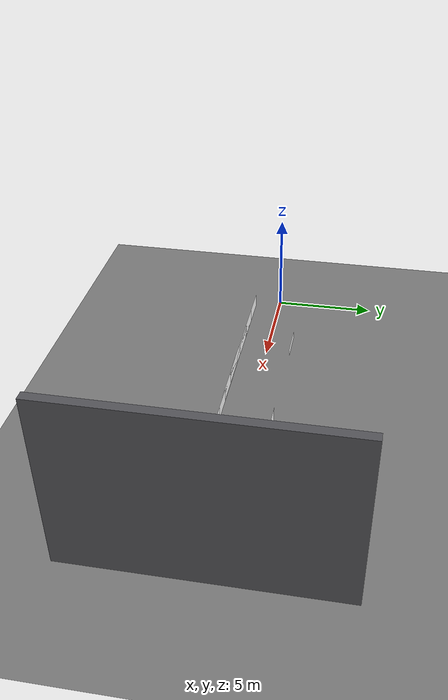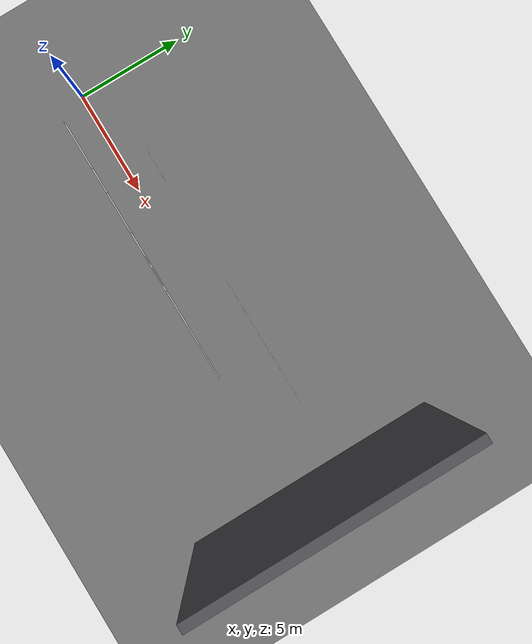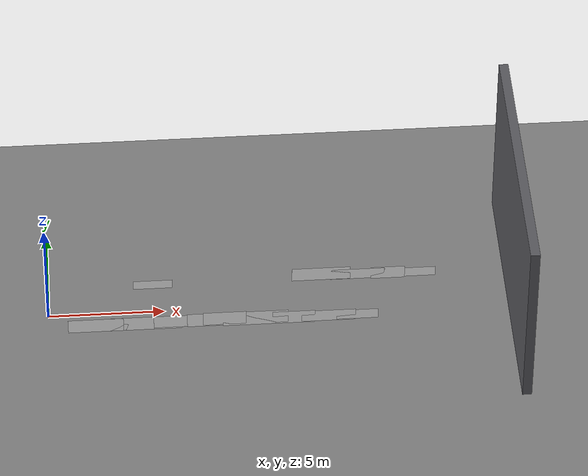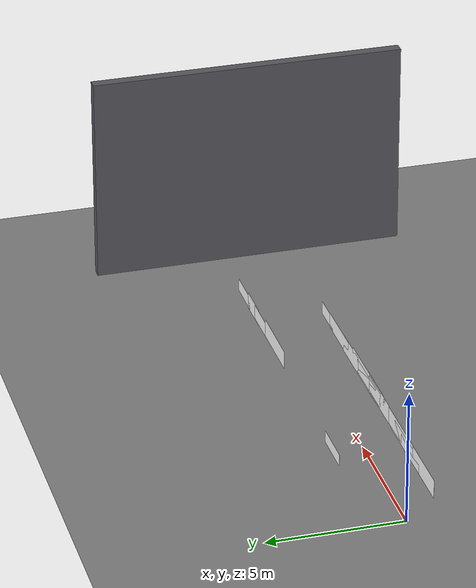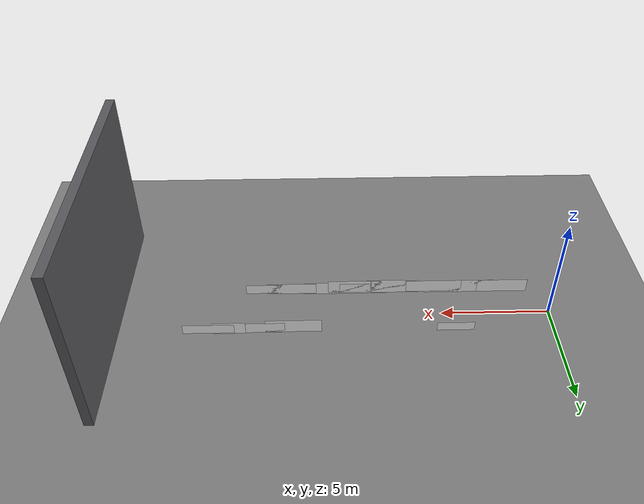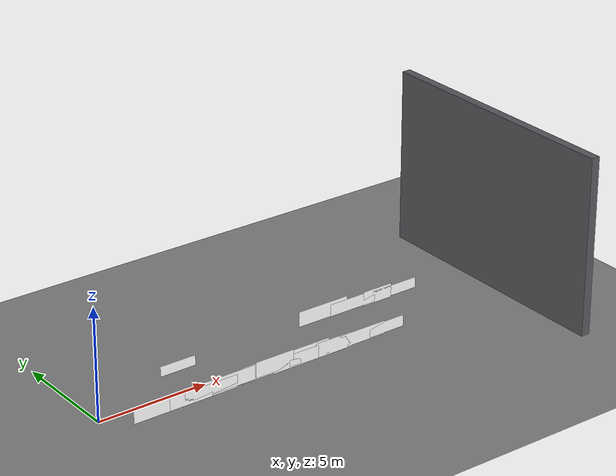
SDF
<sdf version="1.9">
 <world name="tunnel_world">
  <model name="ground_plane">
   <static>true</static>
   <link name="ground">
    <collision name="ground_collision">
     <geometry><plane><normal>0 0 1</normal><size>100 100</size></plane></geometry>
    </collision>
    <visual name="ground_visual">
     <geometry><plane><normal>0 0 1</normal><size>100 100</size></plane></geometry>
     <material>
      <ambient>0.5 0.5 0.5</ambient>
      <diffuse>0.50 0.50 0.50 1</diffuse>
      <emissive>0.08 0.08 0.08 1</emissive>
      <specular>0.05 0.05 0.05 1</specular>
      <pbr>
       <metal>
        <albedo_map>file:///home/ylf/workspace/inspection_robot/worlds/textures/tunnel_concrete_floor.png</albedo_map>
        <metalness>0.0</metalness>
        <roughness>0.9</roughness>
       </metal>
      </pbr>
     </material>
    </visual>
   </link>
  </model>
  <model name="tunnel_end_wall_far">
   <static>true</static>
   <pose>20 0 3.5 0 0 0</pose>
   <link name="wall">
    <visual name="visual">
     <geometry><box><size>0.4 12 9</size></box></geometry>
     <material>
      <diffuse>0.35 0.35 0.37 1</diffuse>
      <emissive>0.06 0.06 0.06 1</emissive>
      <ambient>0.35 0.35 0.37</ambient>
     </material>
    </visual>
    <collision name="collision"><geometry><box><size>0.4 12 9</size></box></geometry></collision>
   </link>
  </model>
  <model name="defect_crack_01">
   <static>true</static>
   <pose>2.014 -1.25 0.554 0 0 0</pose>
   <link name="link">
    <visual name="visual">
     <laser_retro>500</laser_retro>
     <geometry><box><size>2.364 0.004 0.708</size></box></geometry>
     <material>
      <ambient>1 1 1 1</ambient>
      <diffuse>1 1 1 1</diffuse>
      <emissive>0.05 0.05 0.05 1</emissive>
      <specular>0.05 0.05 0.05 1</specular>
      <pbr>
       <metal>
        <albedo_map>file:///home/ylf/workspace/inspection_robot/data_gen/textures_crack/crack_15.png</albedo_map>
        <metalness>0.0</metalness>
        <roughness>0.9</roughness>
       </metal>
      </pbr>
     </material>
    </visual>
    <collision name="collision"><geometry><box><size>2.364 0.004 0.708</size></box></geometry></collision>
   </link>
  </model>
  <model name="defect_crack_02">
   <static>true</static>
   <pose>3.49 -1.25 0.56 0 0 0</pose>
   <link name="link">
    <visual name="visual">
     <laser_retro>500</laser_retro>
     <geometry><box><size>2.002 0.004 0.72</size></box></geometry>
     <material>
      <ambient>1 1 1 1</ambient>
      <diffuse>1 1 1 1</diffuse>
      <emissive>0.05 0.05 0.05 1</emissive>
      <specular>0.05 0.05 0.05 1</specular>
      <pbr>
       <metal>
        <albedo_map>file:///home/ylf/workspace/inspection_robot/data_gen/textures_crack/crack_24.png</albedo_map>
        <metalness>0.0</metalness>
        <roughness>0.9</roughness>
       </metal>
      </pbr>
     </material>
    </visual>
    <collision name="collision"><geometry><box><size>2.002 0.004 0.72</size></box></geometry></collision>
   </link>
  </model>
  <model name="defect_crack_03">
   <static>true</static>
   <pose>4.443 -1.25 0.489 0 0 0</pose>
   <link name="link">
    <visual name="visual">
     <laser_retro>500</laser_retro>
     <geometry><box><size>2.489 0.004 0.577</size></box></geometry>
     <material>
      <ambient>1 1 1 1</ambient>
      <diffuse>1 1 1 1</diffuse>
      <emissive>0.05 0.05 0.05 1</emissive>
      <specular>0.05 0.05 0.05 1</specular>
      <pbr>
       <metal>
        <albedo_map>file:///home/ylf/workspace/inspection_robot/data_gen/textures_crack/crack_22.png</albedo_map>
        <metalness>0.0</metalness>
        <roughness>0.9</roughness>
       </metal>
      </pbr>
     </material>
    </visual>
    <collision name="collision"><geometry><box><size>2.489 0.004 0.577</size></box></geometry></collision>
   </link>
  </model>
  <model name="defect_crack_04">
   <static>true</static>
   <pose>4.538 1.25 0.429 0 0 0</pose>
   <link name="link">
    <visual name="visual">
     <laser_retro>500</laser_retro>
     <geometry><box><size>1.683 0.004 0.457</size></box></geometry>
     <material>
      <ambient>1 1 1 1</ambient>
      <diffuse>1 1 1 1</diffuse>
      <emissive>0.05 0.05 0.05 1</emissive>
      <specular>0.05 0.05 0.05 1</specular>
      <pbr>
       <metal>
        <albedo_map>file:///home/ylf/workspace/inspection_robot/data_gen/textures_crack/crack_93.png</albedo_map>
        <metalness>0.0</metalness>
        <roughness>0.9</roughness>
       </metal>
      </pbr>
     </material>
    </visual>
    <collision name="collision"><geometry><box><size>1.683 0.004 0.457</size></box></geometry></collision>
   </link>
  </model>
  <model name="defect_crack_05">
   <static>true</static>
   <pose>5.256 -1.25 0.594 0 0 0</pose>
   <link name="link">
    <visual name="visual">
     <laser_retro>500</laser_retro>
     <geometry><box><size>2.598 0.004 0.652</size></box></geometry>
     <material>
      <ambient>1 1 1 1</ambient>
      <diffuse>1 1 1 1</diffuse>
      <emissive>0.05 0.05 0.05 1</emissive>
      <specular>0.05 0.05 0.05 1</specular>
      <pbr>
       <metal>
        <albedo_map>file:///home/ylf/workspace/inspection_robot/data_gen/textures_crack/crack_44.png</albedo_map>
        <metalness>0.0</metalness>
        <roughness>0.9</roughness>
       </metal>
      </pbr>
     </material>
    </visual>
    <collision name="collision"><geometry><box><size>2.598 0.004 0.652</size></box></geometry></collision>
   </link>
  </model>
  <model name="defect_crack_06">
   <static>true</static>
   <pose>7.061 -1.25 0.598 0 0 0</pose>
   <link name="link">
    <visual name="visual">
     <laser_retro>500</laser_retro>
     <geometry><box><size>2.281 0.004 0.722</size></box></geometry>
     <material>
      <ambient>1 1 1 1</ambient>
      <diffuse>1 1 1 1</diffuse>
      <emissive>0.05 0.05 0.05 1</emissive>
      <specular>0.05 0.05 0.05 1</specular>
      <pbr>
       <metal>
        <albedo_map>file:///home/ylf/workspace/inspection_robot/data_gen/textures_crack/crack_189.png</albedo_map>
        <metalness>0.0</metalness>
        <roughness>0.9</roughness>
       </metal>
      </pbr>
     </material>
    </visual>
    <collision name="collision"><geometry><box><size>2.281 0.004 0.722</size></box></geometry></collision>
   </link>
  </model>
  <model name="defect_crack_07">
   <static>true</static>
   <pose>7.519 -1.25 0.64 0 0 0</pose>
   <link name="link">
    <visual name="visual">
     <laser_retro>500</laser_retro>
     <geometry><box><size>1.834 0.004 0.708</size></box></geometry>
     <material>
      <ambient>1 1 1 1</ambient>
      <diffuse>1 1 1 1</diffuse>
      <emissive>0.05 0.05 0.05 1</emissive>
      <specular>0.05 0.05 0.05 1</specular>
      <pbr>
       <metal>
        <albedo_map>file:///home/ylf/workspace/inspection_robot/data_gen/textures_crack/crack_172.png</albedo_map>
        <metalness>0.0</metalness>
        <roughness>0.9</roughness>
       </metal>
      </pbr>
     </material>
    </visual>
    <collision name="collision"><geometry><box><size>1.834 0.004 0.708</size></box></geometry></collision>
   </link>
  </model>
  <model name="defect_crack_08">
   <static>true</static>
   <pose>8.579 -1.25 0.494 0 0 0</pose>
   <link name="link">
    <visual name="visual">
     <laser_retro>500</laser_retro>
     <geometry><box><size>2.258 0.004 0.588</size></box></geometry>
     <material>
      <ambient>1 1 1 1</ambient>
      <diffuse>1 1 1 1</diffuse>
      <emissive>0.05 0.05 0.05 1</emissive>
      <specular>0.05 0.05 0.05 1</specular>
      <pbr>
       <metal>
        <albedo_map>file:///home/ylf/workspace/inspection_robot/data_gen/textures_crack/crack_79.png</albedo_map>
        <metalness>0.0</metalness>
        <roughness>0.9</roughness>
       </metal>
      </pbr>
     </material>
    </visual>
    <collision name="collision"><geometry><box><size>2.258 0.004 0.588</size></box></geometry></collision>
   </link>
  </model>
  <model name="defect_crack_09">
   <static>true</static>
   <pose>9.248 -1.25 0.615 0 0 0</pose>
   <link name="link">
    <visual name="visual">
     <laser_retro>500</laser_retro>
     <geometry><box><size>2.001 0.004 0.699</size></box></geometry>
     <material>
      <ambient>1 1 1 1</ambient>
      <diffuse>1 1 1 1</diffuse>
      <emissive>0.05 0.05 0.05 1</emissive>
      <specular>0.05 0.05 0.05 1</specular>
      <pbr>
       <metal>
        <albedo_map>file:///home/ylf/workspace/inspection_robot/data_gen/textures_crack/crack_65.png</albedo_map>
        <metalness>0.0</metalness>
        <roughness>0.9</roughness>
       </metal>
      </pbr>
     </material>
    </visual>
    <collision name="collision"><geometry><box><size>2.001 0.004 0.699</size></box></geometry></collision>
   </link>
  </model>
  <model name="defect_crack_10">
   <static>true</static>
   <pose>10.486 -1.25 0.534 0 0 0</pose>
   <link name="link">
    <visual name="visual">
     <laser_retro>500</laser_retro>
     <geometry><box><size>1.821 0.004 0.668</size></box></geometry>
     <material>
      <ambient>1 1 1 1</ambient>
      <diffuse>1 1 1 1</diffuse>
      <emissive>0.05 0.05 0.05 1</emissive>
      <specular>0.05 0.05 0.05 1</specular>
      <pbr>
       <metal>
        <albedo_map>file:///home/ylf/workspace/inspection_robot/data_gen/textures_crack/crack_156.png</albedo_map>
        <metalness>0.0</metalness>
        <roughness>0.9</roughness>
       </metal>
      </pbr>
     </material>
    </visual>
    <collision name="collision"><geometry><box><size>1.821 0.004 0.668</size></box></geometry></collision>
   </link>
  </model>
  <model name="defect_crack_11">
   <static>true</static>
   <pose>11.836 1.25 0.61 0 0 0</pose>
   <link name="link">
    <visual name="visual">
     <laser_retro>500</laser_retro>
     <geometry><box><size>2.529 0.004 0.694</size></box></geometry>
     <material>
      <ambient>1 1 1 1</ambient>
      <diffuse>1 1 1 1</diffuse>
      <emissive>0.05 0.05 0.05 1</emissive>
      <specular>0.05 0.05 0.05 1</specular>
      <pbr>
       <metal>
        <albedo_map>file:///home/ylf/workspace/inspection_robot/data_gen/textures_crack/crack_55.png</albedo_map>
        <metalness>0.0</metalness>
        <roughness>0.9</roughness>
       </metal>
      </pbr>
     </material>
    </visual>
    <collision name="collision"><geometry><box><size>2.529 0.004 0.694</size></box></geometry></collision>
   </link>
  </model>
  <model name="defect_crack_12">
   <static>true</static>
   <pose>11.972 -1.25 0.537 0 0 0</pose>
   <link name="link">
    <visual name="visual">
     <laser_retro>500</laser_retro>
     <geometry><box><size>2.328 0.004 0.594</size></box></geometry>
     <material>
      <ambient>1 1 1 1</ambient>
      <diffuse>1 1 1 1</diffuse>
      <emissive>0.05 0.05 0.05 1</emissive>
      <specular>0.05 0.05 0.05 1</specular>
      <pbr>
       <metal>
        <albedo_map>file:///home/ylf/workspace/inspection_robot/data_gen/textures_crack/crack_10.png</albedo_map>
        <metalness>0.0</metalness>
        <roughness>0.9</roughness>
       </metal>
      </pbr>
     </material>
    </visual>
    <collision name="collision"><geometry><box><size>2.328 0.004 0.594</size></box></geometry></collision>
   </link>
  </model>
  <model name="defect_crack_13">
   <static>true</static>
   <pose>13.218 -1.25 0.536 0 0 0</pose>
   <link name="link">
    <visual name="visual">
     <laser_retro>500</laser_retro>
     <geometry><box><size>1.774 0.004 0.512</size></box></geometry>
     <material>
      <ambient>1 1 1 1</ambient>
      <diffuse>1 1 1 1</diffuse>
      <emissive>0.05 0.05 0.05 1</emissive>
      <specular>0.05 0.05 0.05 1</specular>
      <pbr>
       <metal>
        <albedo_map>file:///home/ylf/workspace/inspection_robot/data_gen/textures_crack/crack_149.png</albedo_map>
        <metalness>0.0</metalness>
        <roughness>0.9</roughness>
       </metal>
      </pbr>
     </material>
    </visual>
    <collision name="collision"><geometry><box><size>1.774 0.004 0.512</size></box></geometry></collision>
   </link>
  </model>
  <model name="defect_crack_14">
   <static>true</static>
   <pose>13.396 1.25 0.521 0 0 0</pose>
   <link name="link">
    <visual name="visual">
     <laser_retro>500</laser_retro>
     <geometry><box><size>2.341 0.004 0.552</size></box></geometry>
     <material>
      <ambient>1 1 1 1</ambient>
      <diffuse>1 1 1 1</diffuse>
      <emissive>0.05 0.05 0.05 1</emissive>
      <specular>0.05 0.05 0.05 1</specular>
      <pbr>
       <metal>
        <albedo_map>file:///home/ylf/workspace/inspection_robot/data_gen/textures_crack/crack_175.png</albedo_map>
        <metalness>0.0</metalness>
        <roughness>0.9</roughness>
       </metal>
      </pbr>
     </material>
    </visual>
    <collision name="collision"><geometry><box><size>2.341 0.004 0.552</size></box></geometry></collision>
   </link>
  </model>
  <model name="defect_crack_15">
   <static>true</static>
   <pose>14.727 1.25 0.523 0 0 0</pose>
   <link name="link">
    <visual name="visual">
     <laser_retro>500</laser_retro>
     <geometry><box><size>1.471 0.004 0.646</size></box></geometry>
     <material>
      <ambient>1 1 1 1</ambient>
      <diffuse>1 1 1 1</diffuse>
      <emissive>0.05 0.05 0.05 1</emissive>
      <specular>0.05 0.05 0.05 1</specular>
      <pbr>
       <metal>
        <albedo_map>file:///home/ylf/workspace/inspection_robot/data_gen/textures_crack/crack_41.png</albedo_map>
        <metalness>0.0</metalness>
        <roughness>0.9</roughness>
       </metal>
      </pbr>
     </material>
    </visual>
    <collision name="collision"><geometry><box><size>1.471 0.004 0.646</size></box></geometry></collision>
   </link>
  </model>
  <model name="defect_crack_16">
   <static>true</static>
   <pose>15.649 1.25 0.493 0 0 0</pose>
   <link name="link">
    <visual name="visual">
     <laser_retro>500</laser_retro>
     <geometry><box><size>2.305 0.004 0.491</size></box></geometry>
     <material>
      <ambient>1 1 1 1</ambient>
      <diffuse>1 1 1 1</diffuse>
      <emissive>0.05 0.05 0.05 1</emissive>
      <specular>0.05 0.05 0.05 1</specular>
      <pbr>
       <metal>
        <albedo_map>file:///home/ylf/workspace/inspection_robot/data_gen/textures_crack/crack_111.png</albedo_map>
        <metalness>0.0</metalness>
        <roughness>0.9</roughness>
       </metal>
      </pbr>
     </material>
    </visual>
    <collision name="collision"><geometry><box><size>2.305 0.004 0.491</size></box></geometry></collision>
   </link>
  </model>
 </world>
</sdf>
